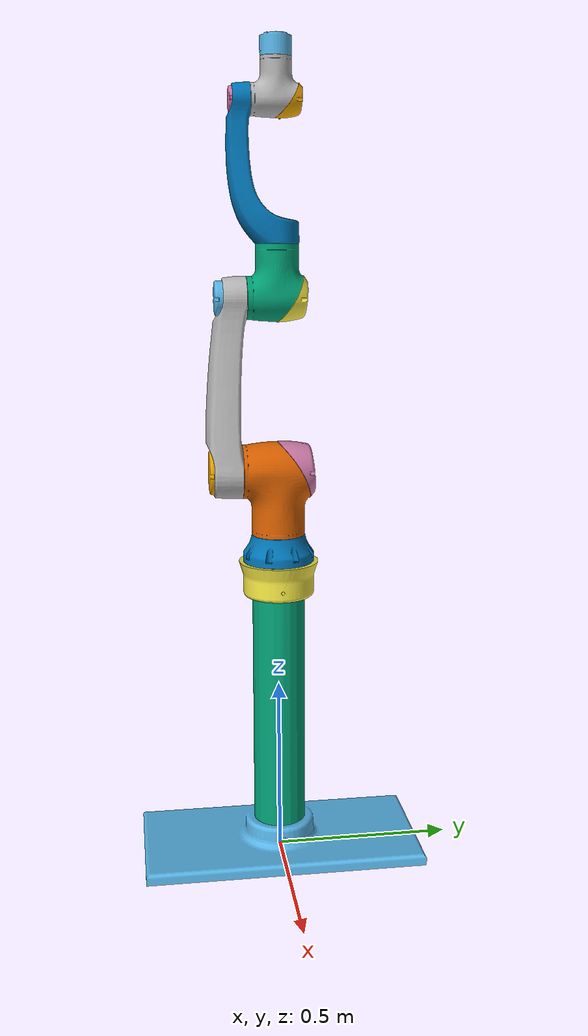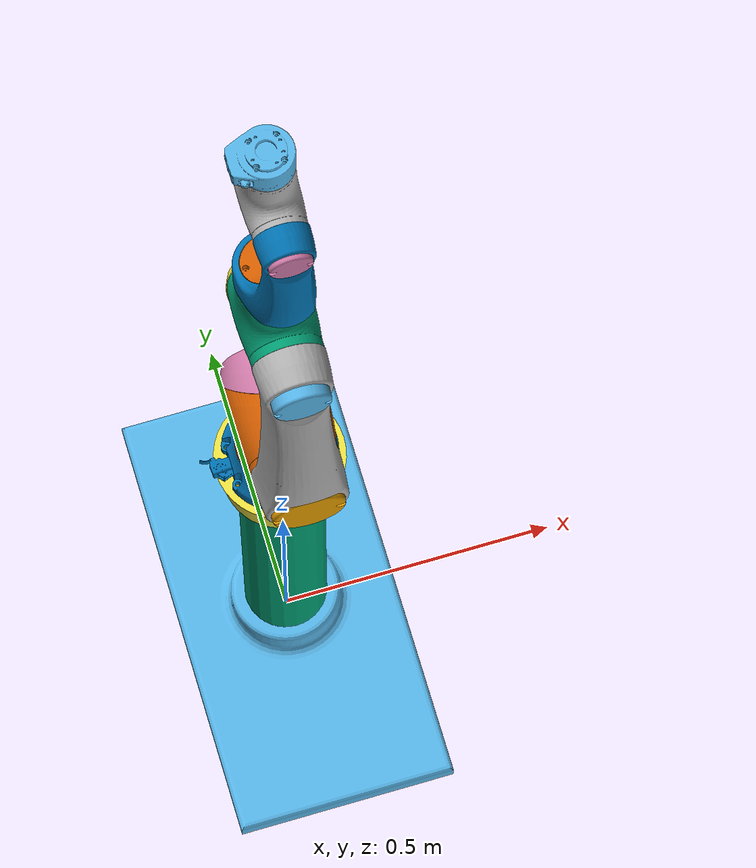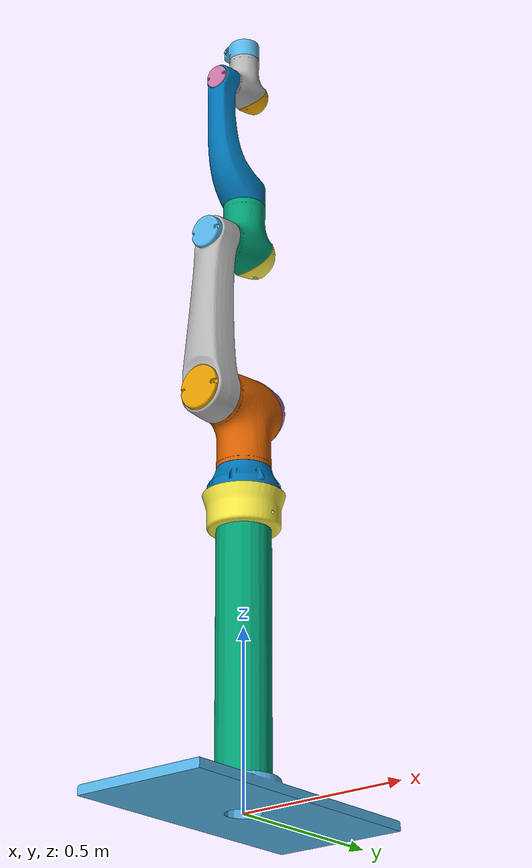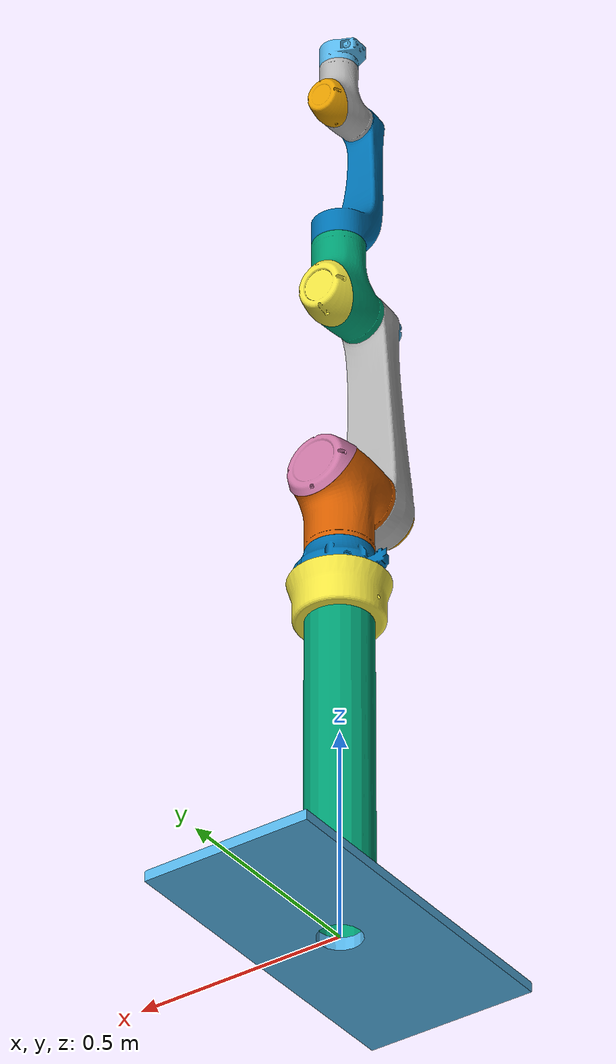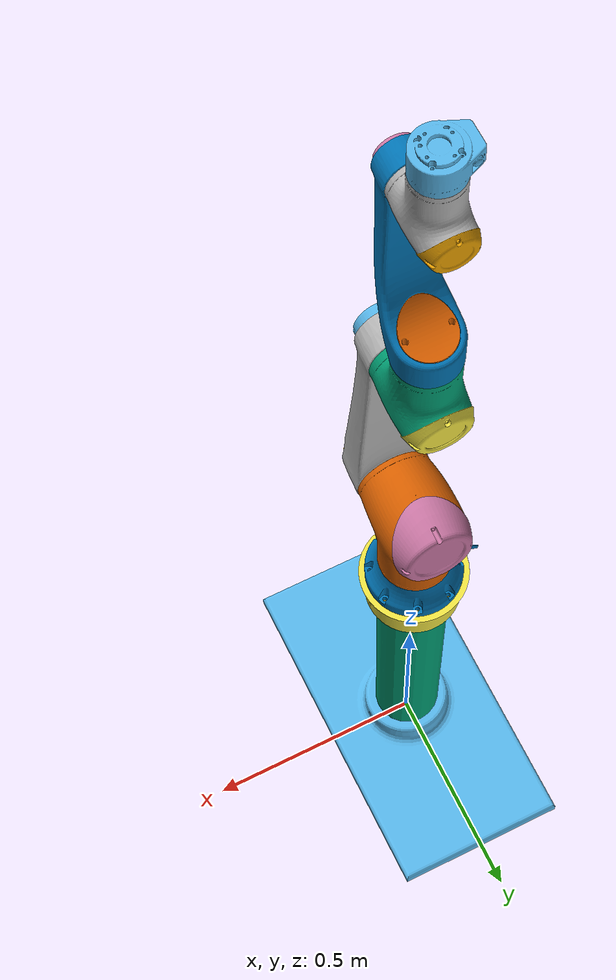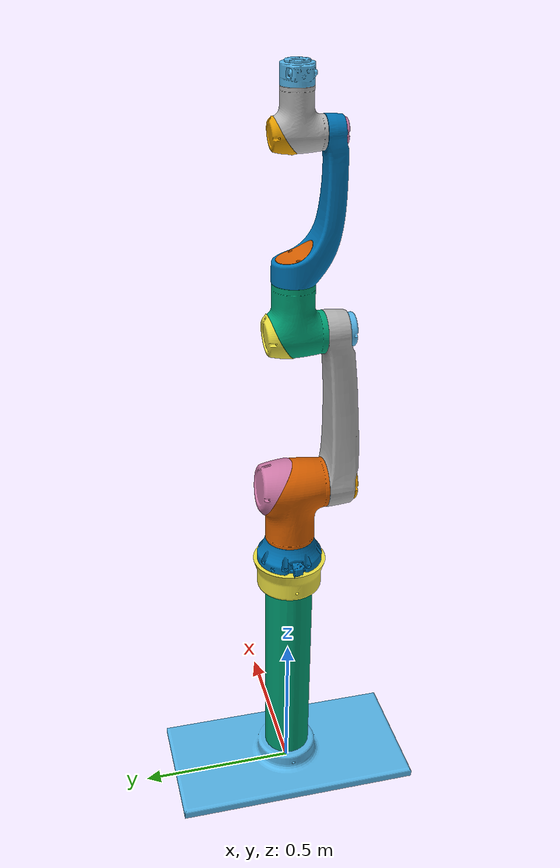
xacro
<?xml version="1.0"?>

<robot xmlns:xacro = "https://www.ros.org/wiki/xacro">

    <link name = "base_footprint" />

    <link name="base_link">
        <visual>
            <origin xyz="0 0 0" rpy="0 0 0" />
            <geometry>
                <mesh filename="package://robot_description/meshes/base_link.STL" />
            </geometry>
            <material name="base_color" />
        </visual>
        <inertial>
            <origin xyz="-1.10267350805771E-12 1.45548156860187E-11 0.0185781258006132" rpy="0 0 0" />
            <mass value="79.3842790497946" />
            <inertia ixx="4.00362178956405" ixy="-1.91188561568803E-06" ixz="3.87272485057835E-12"
                     iyy="1.03087893550912" iyz="-5.48477794489235E-11"
                     izz="4.99667270923305" />
        </inertial>
        <collision>
            <origin xyz="0 0 0" rpy="0 0 0" />
            <geometry>
                <mesh filename="package://robot_description/meshes/base_link.STL" />
            </geometry>
        </collision>
    </link>

    <link name="cylinder_link">
        <visual>
            <origin xyz="0 0 0" rpy="0 0 0" />
            <geometry>
                <mesh filename="package://robot_description/meshes/cylinder_link.STL" />
            </geometry>
            <material name="cylinder_color" />
        </visual>
        <inertial>
            <origin xyz="-1.11022302462516E-16 0 2.42861286636753E-17" rpy="0 0 0" />
            <mass value="61.9831151649633" />
            <inertia ixx="3.42650356761244" ixy="4.17733831902752E-10" ixz="5.31543610028659E-07"
                     iyy="3.42625368778769" iyz="-2.94553580269862E-09"
                     izz="0.251813035403341" />
        </inertial>
        <collision>
            <origin xyz="0 0 0" rpy="0 0 0" />
            <geometry>
                <mesh filename="package://robot_description/meshes/cylinder_link.STL" />
            </geometry>
        </collision>
    </link>

    <link name="base_link2">
        <visual>
            <origin xyz="0 0 0" rpy="0 0 0" />
            <geometry>
                <mesh filename="package://robot_description/meshes/base_link2.STL" />
            </geometry>
            <material name="base_color" />
        </visual>
        <inertial>
            <origin xyz="-4.98779490099022E-07 4.12488153946067E-08 -1.36094337521708E-07" rpy="0 0 0" />
            <mass value="17.3405579805777" />
            <inertia ixx="0.0693857935173052" ixy="-4.15812778569728E-07" ixz="-1.8472897205184E-07"
                     iyy="0.0691498830677368" iyz="-6.72705187762533E-08"
                     izz="0.111638289541557" />
        </inertial>
        <collision>
            <origin xyz="0 0 0" rpy="0 0 0" />
            <geometry>
                <mesh filename="package://robot_description/meshes/base_link2.STL" />
            </geometry>
        </collision>
    </link>

    <link name="base">
        <visual>
            <origin xyz="0 0 0" rpy="0 0 0" />
            <geometry>
                <mesh filename="package://robot_description/meshes/base.STL" />
            </geometry>
            <material name="base_color" />
        </visual>
        <inertial>
            <origin xyz="0.00272736311403243 -0.000318973989885091 0.0262857450146657" rpy="0 0 0" />
            <mass value="2.39038130941801" />
            <inertia ixx="0.00812861332272554" ixy="-4.70652353452538E-05" ixz="0.000105270877542648"
                     iyy="0.00725251859659414" iyz="-1.05216511344618E-05"
                     izz="0.0140531329173185" />
        </inertial>
        <collision>
            <origin xyz="0 0 0" rpy="0 0 0" />
            <geometry>
                <mesh filename="package://robot_description/meshes/base.STL" />
            </geometry>
        </collision>
    </link>

    <link name="link_1">
        <visual>
            <origin xyz="0 0 0" rpy="0 0 0" />
            <geometry>
                <mesh filename="package://robot_description/meshes/link_1.STL" />
            </geometry>
            <material name="link_color" />
        </visual>
        <inertial>
            <origin xyz="-9.5930146648604E-05 -0.0284863485005264 0.143718312451907" rpy="0 0 0" />
            <mass value="13.2951060206365" />
            <inertia ixx="0.11569468384613"  ixy="-6.49030444573711E-05" ixz="9.72824722491766E-05"
                     iyy="0.103781904743927" iyz="0.0260697819910889"
                     izz="0.0525447624322488" />
        </inertial>
        <collision>
            <origin xyz="0 0 0" rpy="0 0 0" />
            <geometry>
                <mesh filename="package://robot_description/meshes/link_1.STL" />
            </geometry>
        </collision>
    </link>

    <link name="tapa_link1">
        <visual>
            <origin xyz="0 0 0" rpy="0 0 0" />
            <geometry>
                <mesh filename="package://robot_description/meshes/tapa_link1.STL" />
            </geometry>
            <material name="tapa_color" />
        </visual>
        <inertial>
            <origin xyz="2.64013488421311E-06 2.8897162859462E-06 -3.913914219833E-06" rpy="0 0 0" />
            <mass value="0.253605548814056" />
            <inertia ixx="0.000622496811062694" ixy="1.34787739817085E-06" ixz="6.92132237613598E-07"
                     iyy="0.000956154910219405" iyz="0.000182501695526524"
                     izz="0.000617517488238175" />
        </inertial>
        <collision>
            <origin xyz="0 0 0" rpy="0 0 0" />
            <geometry>
                <mesh filename="package://robot_description/meshes/tapa_link1.STL" />
            </geometry>
        </collision>
    </link>

    <link name="link_2">
        <inertial>
            <origin xyz="-0.211407081662651 7.18135667171493E-06 0.0384391177875234" rpy="0 0 0" />
            <mass value="4.16925718981076" />
            <inertia ixx="0.0108683744943863" ixy="2.1021916437197E-05" ixz="-0.00448323011526969"
                     iyy="0.118115165198652" iyz="1.22725725644987E-06"
                     izz="0.121902089014938" />
        </inertial>
        <visual>
            <origin xyz="0 0 0" rpy="0 0 0" />
            <geometry>
                <mesh filename="package://robot_description/meshes/link_2.STL" />
            </geometry>
            <material name="link_color" />
        </visual>
        <collision>
            <origin xyz="0 0 0" rpy="0 0 0" />
            <geometry>
                <mesh filename="package://robot_description/meshes/link_2.STL" />
            </geometry>
        </collision>
    </link>

    <link name="tapa1_link2">
        <visual>
            <origin xyz="0 0 0" rpy="0 0 0" />
            <geometry>
                <mesh filename="package://robot_description/meshes/tapa1_link2.STL" />
            </geometry>
            <material name="tapa_color" />
        </visual>
        <inertial>
            <origin xyz="2.47650788764986E-11 -6.2501392950054E-12 -1.02495789633394E-12" rpy="0 0 0" />
            <mass value="0.135827890069284" />
            <inertia ixx="0.000208902219696057" ixy="7.07488938854638E-07" ixz="-9.78702432513944E-12"
                     iyy="0.00038467670051538" iyz="2.06532826974994E-14"
                     izz="0.000213978789427341" />
        </inertial>
        <collision>
            <origin xyz="0 0 0" rpy="0 0 0" />
            <geometry>
                <mesh filename="package://robot_description/meshes/tapa1_link2.STL" />
            </geometry>
        </collision>
    </link>

   <link name="tapa2_link2">
        <visual>
            <origin xyz="0 0 0" rpy="0 0 0" />
            <geometry>
                <mesh filename="package://robot_description/meshes/tapa2_link2.STL" />
            </geometry>
            <material name="tapa_color" />
        </visual>
        <inertial>
            <origin xyz="2.32163177571465E-11 -4.65849581132716E-13 -6.97220059464598E-13" rpy="0 0 0" />
            <mass value="0.0904341998873574" />
            <inertia ixx="8.83352942367115E-05" ixy="2.56863235245688E-07" ixz="-4.20384137191628E-12"
                     iyy="0.000152151967048013" iyz="-1.201045443023E-13"
                     izz="8.99273976019369E-05" />
        </inertial>
        <collision>
            <origin xyz="0 0 0" rpy="0 0 0" />
            <geometry>
                <mesh filename="package://robot_description/meshes/tapa2_link2.STL" />
            </geometry>
        </collision>
    </link>

    <link name="link_3">
        <visual>
            <origin xyz="0 0 0" rpy="0 0 0" />
            <geometry>
                <mesh filename="package://robot_description/meshes/link_3.STL" />
            </geometry>
            <material name="link_color" />
        </visual>
        <inertial>
            <origin xyz="-3.0585813674322E-05 0.0546951454489053 -0.0839984732548666" rpy="0 0 0" />
            <mass value="2.43764698986409" />
            <inertia ixx="0.013830941278572"   ixy="-3.28330406888741E-06" ixz="-2.18915480012513E-06"
                     iyy="0.00635285190522291" iyz="0.00338671577647053"
                    izz="0.0120324506787071" />
        </inertial>
        <collision>
            <origin xyz="0 0 0" rpy="0 0 0" />
            <geometry>
                <mesh filename="package://robot_description/meshes/link_3.STL" />
            </geometry>
        </collision>
    </link>

    <link name="tapa1_link3">
        <visual>
            <origin xyz="0 0 0" rpy="0 0 0" />
            <geometry>
                <mesh filename="package://robot_description/meshes/tapa1_link3.STL" />
            </geometry>
            <material name="tapa_color" />
        </visual>
        <inertial>
            <origin xyz="4.22834897045865E-06 -1.44377980448515E-06 8.28364195681885E-07" rpy="0 0 0" />
            <mass value="0.16160332982735" />
            <inertia ixx="0.000236804610794975" ixy="5.03977454941728E-07" ixz="-2.73334122909345E-07"
                     iyy="0.000361171403574182" iyz="-7.00443290447097E-05"
                     izz="0.000239816991506547" />
        </inertial>
        <collision>
            <origin xyz="0 0 0" rpy="0 0 0" />
            <geometry>
                <mesh filename="package://robot_description/meshes/tapa1_link3.STL" />
            </geometry>
        </collision>
    </link>

    <link name="link_4">
        <visual>
            <origin xyz="0 0 0" rpy="0 0 0" />
            <geometry>
                <mesh filename="package://robot_description/meshes/link_4.STL" />
            </geometry>
            <material name="link_color" />
        </visual>
        <inertial>
            <origin xyz="0.000189492169548555 -0.0676376222459832 0.121361599762999" rpy="0 0 0" />
            <mass value="1.91628847592935" />
            <inertia ixx="0.0331445204581152" ixy="-9.67725293430085E-06" ixz="3.06529262055772E-05"
                     iyy="0.0307131637518387" iyz="0.00716033571357413"
                     izz="0.00660113459122076" />
        </inertial>
        <collision>
            <origin xyz="0 0 0" rpy="0 0 0" />
            <geometry>
                <mesh filename="package://robot_description/meshes/link_4.STL" />
            </geometry>
        </collision>
    </link>

    <link name="tapa1_link4">
        <visual>
            <origin xyz="0 0 0" rpy="0 0 0" />
            <geometry>
                <mesh filename="package://robot_description/meshes/tapa1_link4.STL" />
            </geometry>
            <material name="tapa_color" />
        </visual>
        <inertial>
            <origin xyz="-3.65437566318683E-08 -9.95315585575196E-07 7.22278878928506E-08" rpy="0 0 0" />
            <mass value="0.0853393329674418" />
            <inertia ixx="7.60970540781823E-05" ixy="1.4289050251064E-08" ixz="7.07419608880847E-08"
                     iyy="8.05781079919283E-05" iyz="1.75736930770618E-05"
                     izz="0.000130669101840258" />
        </inertial>
        <collision>
            <origin xyz="0 0 0" rpy="0 0 0" />
            <geometry>
                <mesh filename="package://robot_description/meshes/tapa1_link4.STL" />
            </geometry>
        </collision>
    </link>

    <link name="tapa2_link4">
        <visual>
            <origin xyz="0 0 0" rpy="0 0 0" />
            <geometry>
                <mesh filename="package://robot_description/meshes/tapa2_link4.STL" />
            </geometry>
            <material name="tapa_color" />
        </visual>
        <inertial>
            <origin xyz="2.01493322027346E-10 2.95943852757219E-10 5.0628190528812E-10" rpy="0 0 0" />
            <mass value="0.0321690128696335" />
            <inertia ixx="1.22943519188531E-05" ixy="4.42526012260481E-08" ixz="-4.57906422888054E-12"
                     iyy="2.30574480828349E-05" iyz="1.04967292376554E-13"
                     izz="1.27332048472055E-05" />
        </inertial>
        <collision>
            <origin xyz="0 0 0" rpy="0 0 0" />
            <geometry>
                <mesh filename="package://robot_description/meshes/tapa2_link4.STL" />
            </geometry>
        </collision>
    </link>

   <link name="link_5">
        <visual>
            <origin xyz="0 0 0" rpy="0 0 0" />
            <geometry>
                <mesh filename="package://robot_description/meshes/link_5.STL" />
            </geometry>
            <material name="link_color" />
        </visual>
        <inertial>
            <origin xyz="5.50259177828361E-06 0.0396051941881115 -0.0689830260858697" rpy="0 0 0" />
            <mass value="2.80940304611407" />
            <inertia ixx="0.00928600670000158" ixy="-6.17486843983493E-07" ixz="1.21884799876206E-06"
                     iyy="0.00436496700640216" iyz="0.00229166419817408"
                     izz="0.00767432775387095" />
        </inertial>
        <collision>
            <origin xyz="0 0 0" rpy="0 0 0" />
            <geometry>
                <mesh filename="package://robot_description/meshes/link_5.STL" />
            </geometry>
        </collision>
    </link>

    <link name="tapa1_link5">
        <visual>
            <origin xyz="0 0 0" rpy="0 0 0" />
            <geometry>
                <mesh filename="package://robot_description/meshes/tapa1_link5.STL" />
            </geometry>
            <material name="tapa_color" />
        </visual>
        <inertial>
            <origin xyz="-3.52169153461368E-06 2.1470889627756E-06 1.82174527219026E-06" rpy="0 0 0" />
            <mass value="0.0688720001836159" />
            <inertia ixx="5.97204412935316E-05" ixy="9.08776788746088E-08" ixz="-7.94396232604714E-08"
                     iyy="8.20704851522235E-05" iyz="-1.88985675874584E-05"
                     izz="6.1373102537693E-05" />
        </inertial>
        <collision>
            <origin xyz="0 0 0" rpy="0 0 0" />
            <geometry>
                <mesh filename="package://robot_description/meshes/tapa1_link5.STL" />
            </geometry>
        </collision>
    </link>

    <link name="link_6">
        <visual>
            <origin xyz="0 0 0" rpy="0 0 0" />
            <geometry>
                <mesh filename="package://robot_description/meshes/link_6.STL" />
            </geometry>
            <material name="link_color" />
        </visual>
        <inertial>
            <origin xyz="-0.00817345311980977 0.000125717975131553 0.033963854490799" rpy="0 0 0" />
            <mass value="0.323684203736786" />
            <inertia ixx="0.000219252001631913" ixy="5.89476147539048E-07" ixz="-6.00301835598225E-06"
                     iyy="0.000225631897342107" iyz="2.75435003713307E-08"
                     izz="0.000378270497234932" />
            </inertial>
        <collision>
            <origin xyz="0 0 0" rpy="0 0 0" />
            <geometry>
                <mesh filename="package://robot_description/meshes/link_6.STL" />
            </geometry>
        </collision>
    </link>

    <joint name = "base_joint" type = "fixed">
        <parent link = "base_footprint" />
        <child  link = "base_link" />
        <origin xyz = "0 0 0" rpy="0 0 0" />
    </joint>

    <joint name="cylinder_joint" type="fixed">
        <origin xyz="0 0 0.43" rpy="0 0 0" />
        <parent link="base_link" />
        <child link="cylinder_link" />
        <axis xyz="0 0 0" />
    </joint>

    <joint name="base_joint2" type="fixed">
        <origin xyz="0 0 0.40246" rpy="0 0 0" />
        <parent link="cylinder_link" />
        <child link="base_link2" />
        <axis xyz="0 0 0" />
    </joint>

     <joint name="joint_base" type="fixed">
        <origin xyz="0 0 0.038537" rpy="0 0 0" />
        <parent link="base_link2" />
        <child link="base" />
        <axis xyz="0 0 0" />
    </joint>

    <joint name="joint_1" type="revolute">
        <origin xyz="0 0 0.0475" rpy="0 0 0" />
        <parent link="base" />
        <child link="link_1" />
        <axis xyz="0 0 -1" />
        <limit lower="-3.1415" upper="3.1415" effort="50" velocity="3" />
        <dynamics damping = "1"  friction = "1"/>
    </joint>

    <joint name="tapa_joint1" type="fixed">
        <origin xyz="0.00024204 0.073937 0.23298" rpy="0 0 0" />
        <parent link="link_1" />
        <child link="tapa_link1" />
        <axis xyz="0 0 0" />
    </joint>

    <joint name="joint_2" type="revolute">
        <origin xyz="-0.00040893 -0.1016 0.2106" rpy="1.5748 1.5708 0" />
        <parent link="link_1" />
        <child link="link_2" />
        <axis xyz="0 0 -1" />
        <limit lower="-1.57" upper="1.57" effort="50" velocity="3" />
        <dynamics damping = "1"  friction = "5"/>
    </joint>

    <joint name="tapa1_joint2" type="fixed">
        <origin xyz="0 0 0.079193" rpy="-1.5708 0.0040249 1.5708" />
        <parent link="link_2" />
        <child link="tapa1_link2" />
        <axis xyz="0 0 0" />
    </joint>

    <joint name="tapa2_joint2" type="fixed">
        <origin xyz="-0.48 0 0.057407" rpy="-1.5708 0.0040249 1.5708" />
        <parent link="link_2" />
        <child link="tapa2_link2" />
        <axis xyz="0 0 0" />
    </joint>

    <joint name="joint_3" type="revolute">
        <origin xyz="-0.48 0 0.0075" rpy="0 0 1.5708" />
        <parent link="link_2" />
        <child link="link_3" />
        <axis xyz="0 0 -1" />
        <limit lower="-2.35619" upper="2.35619" effort="25" velocity="3" />
        <dynamics damping = "1"  friction = "5"/>
    </joint>

    <joint name="tapa1_joint3" type="fixed">
        <origin xyz="7.4277E-05 -0.015479 -0.16751" rpy="-1.5708 0.0040249 0" />
        <parent link="link_3" />
        <child link="tapa1_link3" />
        <axis xyz="0 0 0" />
    </joint>

    <joint name="joint_4" type="revolute">
        <origin xyz="-0.00045753 0.1835 -0.10874" rpy="-1.5708 0.0040249 0" />
        <parent link="link_3" />
        <child link="link_4" />
        <axis xyz="0 0 -1" />
        <limit lower="-3.14" upper="3.14" effort="25" velocity="3" />
        <dynamics damping = "1"  friction = "5"/>
    </joint>

    <joint name="tapa1_joint4" type="fixed">
        <origin xyz="0.00041854 -0.010128 0.033035" rpy="0 0 0" />
        <parent link="link_4" />
        <child link="tapa1_link4" />
        <axis xyz="0 0 0" />
    </joint>

    <joint name="tapa2_joint4" type="fixed">
        <origin xyz="0.00010978 -0.12093 0.3355" rpy="0 0 0" />
        <parent link="link_4" />
        <child link="tapa2_link4" />
        <axis xyz="0 0 0" />
    </joint>

    <joint name="joint_5" type="revolute">
        <origin xyz="9.6354E-05 -0.089737 0.3355" rpy="1.5708 0 -0.0040249" />
        <parent link="link_4" />
        <child link="link_5" />
        <axis xyz="0 0 -1" />
        <limit lower="-3.1415" upper="3.1415" effort="10" velocity="3" />
        <dynamics damping = "1"  friction = "5"/>
    </joint>

    <joint name="tapa1_joint5" type="fixed">
        <origin xyz="0 -0.011671 -0.13887" rpy="-1.5708 0.0040249 0" />
        <parent link="link_5" />
        <child link="tapa1_link5" />
        <axis xyz="0 0 0" />
    </joint>

    <joint name="joint_6" type="revolute">
        <origin xyz="0 0.11 -0.089" rpy="-1.5708 0.0040249 0" />
        <parent link="link_5" />
        <child link="link_6" />
        <axis xyz="0 0 1" />
        <limit lower="-3.1415" upper="3.1415" effort="10" velocity="3" />
        <dynamics damping = "1"  friction = "5"/>
    </joint>

</robot>
